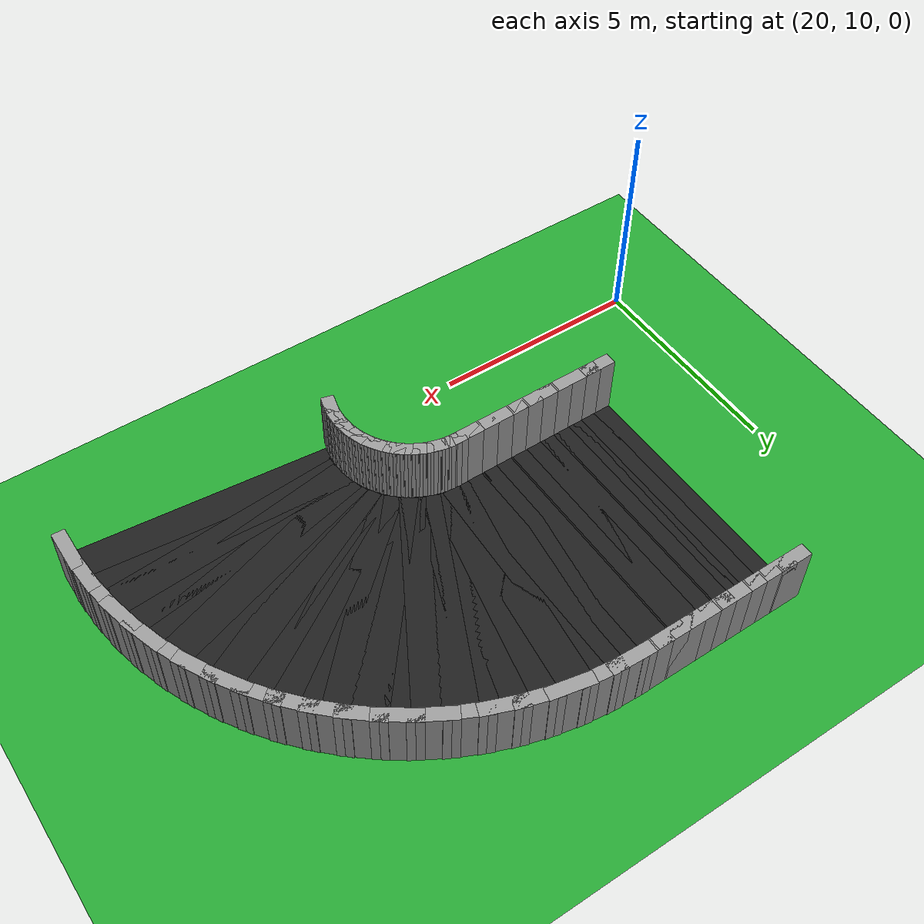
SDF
<sdf version="1.6">
 <world name="loop_road">
  <include><uri>model://sun</uri></include>
  <model name="ground_plane">
   <static>true</static>
   <link name="link">
    <collision name="collision">
     <surface><friction><ode><mu>100</mu><mu2>50</mu2></ode></friction></surface>
     <geometry><plane><normal>0 0 1</normal><size>120 120</size></plane></geometry>
    </collision>
    <visual name="visual">
     <geometry><plane><normal>0 0 1</normal><size>120 120</size></plane></geometry>
     <material>
      <script><uri>file://media/materials/scripts/gazebo.material</uri><name>Gazebo/Green</name></script>
     </material>
    </visual>
   </link>
  </model>
  <model name="curbL_87">
   <static>true</static>
   <pose>28.274 10.116 0.750 0 0 1.31351</pose>
   <link name="link">
    <collision name="collision"><geometry><box><size>0.510 0.300 1.500</size></box></geometry></collision>
    <visual name="visual">
     <geometry><box><size>0.510 0.300 1.500</size></box></geometry>
     <material>
      <script><uri>file://media/materials/scripts/gazebo.material</uri><name>Gazebo/Grey</name></script>
     </material>
    </visual>
   </link>
  </model>
  <model name="curbL_88">
   <static>true</static>
   <pose>28.306 10.263 0.750 0 0 1.39476</pose>
   <link name="link">
    <collision name="collision"><geometry><box><size>0.510 0.300 1.500</size></box></geometry></collision>
    <visual name="visual">
     <geometry><box><size>0.510 0.300 1.500</size></box></geometry>
     <material>
      <script><uri>file://media/materials/scripts/gazebo.material</uri><name>Gazebo/Grey</name></script>
     </material>
    </visual>
   </link>
  </model>
  <model name="asphalt_89">
   <static>true</static>
   <pose>31.460 10.114 0.005 0 0 1.47601</pose>
   <link name="link">
    <visual name="visual">
     <geometry><box><size>0.766 6.000 0.010</size></box></geometry>
     <material>
      <script><uri>file://media/materials/scripts/gazebo.material</uri><name>Gazebo/Black</name></script>
     </material>
    </visual>
   </link>
  </model>
  <model name="curbL_89">
   <static>true</static>
   <pose>28.326 10.412 0.750 0 0 1.47601</pose>
   <link name="link">
    <collision name="collision"><geometry><box><size>0.510 0.300 1.500</size></box></geometry></collision>
    <visual name="visual">
     <geometry><box><size>0.510 0.300 1.500</size></box></geometry>
     <material>
      <script><uri>file://media/materials/scripts/gazebo.material</uri><name>Gazebo/Grey</name></script>
     </material>
    </visual>
   </link>
  </model>
  <model name="asphalt_90">
   <static>true</static>
   <pose>31.481 10.519 0.005 0 0 1.55725</pose>
   <link name="link">
    <visual name="visual">
     <geometry><box><size>0.766 6.000 0.010</size></box></geometry>
     <material>
      <script><uri>file://media/materials/scripts/gazebo.material</uri><name>Gazebo/Black</name></script>
     </material>
    </visual>
   </link>
  </model>
  <model name="curbL_90">
   <static>true</static>
   <pose>28.334 10.562 0.750 0 0 1.55725</pose>
   <link name="link">
    <collision name="collision"><geometry><box><size>0.510 0.300 1.500</size></box></geometry></collision>
    <visual name="visual">
     <geometry><box><size>0.510 0.300 1.500</size></box></geometry>
     <material>
      <script><uri>file://media/materials/scripts/gazebo.material</uri><name>Gazebo/Grey</name></script>
     </material>
    </visual>
   </link>
  </model>
  <model name="curbR_90">
   <static>true</static>
   <pose>34.629 10.477 0.750 0 0 1.55725</pose>
   <link name="link">
    <collision name="collision"><geometry><box><size>1.022 0.300 1.500</size></box></geometry></collision>
    <visual name="visual">
     <geometry><box><size>1.022 0.300 1.500</size></box></geometry>
     <material>
      <script><uri>file://media/materials/scripts/gazebo.material</uri><name>Gazebo/Grey</name></script>
     </material>
    </visual>
   </link>
  </model>
  <model name="asphalt_91">
   <static>true</static>
   <pose>31.470 10.925 0.005 0 0 1.63850</pose>
   <link name="link">
    <visual name="visual">
     <geometry><box><size>0.766 6.000 0.010</size></box></geometry>
     <material>
      <script><uri>file://media/materials/scripts/gazebo.material</uri><name>Gazebo/Black</name></script>
     </material>
    </visual>
   </link>
  </model>
  <model name="curbL_91">
   <static>true</static>
   <pose>28.330 10.712 0.750 0 0 1.63850</pose>
   <link name="link">
    <collision name="collision"><geometry><box><size>0.510 0.300 1.500</size></box></geometry></collision>
    <visual name="visual">
     <geometry><box><size>0.510 0.300 1.500</size></box></geometry>
     <material>
      <script><uri>file://media/materials/scripts/gazebo.material</uri><name>Gazebo/Grey</name></script>
     </material>
    </visual>
   </link>
  </model>
  <model name="curbR_91">
   <static>true</static>
   <pose>34.611 11.138 0.750 0 0 1.63850</pose>
   <link name="link">
    <collision name="collision"><geometry><box><size>1.022 0.300 1.500</size></box></geometry></collision>
    <visual name="visual">
     <geometry><box><size>1.022 0.300 1.500</size></box></geometry>
     <material>
      <script><uri>file://media/materials/scripts/gazebo.material</uri><name>Gazebo/Grey</name></script>
     </material>
    </visual>
   </link>
  </model>
  <model name="asphalt_92">
   <static>true</static>
   <pose>31.427 11.329 0.005 0 0 1.71975</pose>
   <link name="link">
    <visual name="visual">
     <geometry><box><size>0.766 6.000 0.010</size></box></geometry>
     <material>
      <script><uri>file://media/materials/scripts/gazebo.material</uri><name>Gazebo/Black</name></script>
     </material>
    </visual>
   </link>
  </model>
  <model name="curbL_92">
   <static>true</static>
   <pose>28.314 10.861 0.750 0 0 1.71975</pose>
   <link name="link">
    <collision name="collision"><geometry><box><size>0.510 0.300 1.500</size></box></geometry></collision>
    <visual name="visual">
     <geometry><box><size>0.510 0.300 1.500</size></box></geometry>
     <material>
      <script><uri>file://media/materials/scripts/gazebo.material</uri><name>Gazebo/Grey</name></script>
     </material>
    </visual>
   </link>
  </model>
  <model name="curbR_92">
   <static>true</static>
   <pose>34.539 11.796 0.750 0 0 1.71975</pose>
   <link name="link">
    <collision name="collision"><geometry><box><size>1.022 0.300 1.500</size></box></geometry></collision>
    <visual name="visual">
     <geometry><box><size>1.022 0.300 1.500</size></box></geometry>
     <material>
      <script><uri>file://media/materials/scripts/gazebo.material</uri><name>Gazebo/Grey</name></script>
     </material>
    </visual>
   </link>
  </model>
  <model name="asphalt_93">
   <static>true</static>
   <pose>31.350 11.727 0.005 0 0 1.80100</pose>
   <link name="link">
    <visual name="visual">
     <geometry><box><size>0.766 6.000 0.010</size></box></geometry>
     <material>
      <script><uri>file://media/materials/scripts/gazebo.material</uri><name>Gazebo/Black</name></script>
     </material>
    </visual>
   </link>
  </model>
  <model name="curbL_93">
   <static>true</static>
   <pose>28.286 11.009 0.750 0 0 1.80100</pose>
   <link name="link">
    <collision name="collision"><geometry><box><size>0.510 0.300 1.500</size></box></geometry></collision>
    <visual name="visual">
     <geometry><box><size>0.510 0.300 1.500</size></box></geometry>
     <material>
      <script><uri>file://media/materials/scripts/gazebo.material</uri><name>Gazebo/Grey</name></script>
     </material>
    </visual>
   </link>
  </model>
  <model name="curbR_93">
   <static>true</static>
   <pose>34.414 12.445 0.750 0 0 1.80100</pose>
   <link name="link">
    <collision name="collision"><geometry><box><size>1.022 0.300 1.500</size></box></geometry></collision>
    <visual name="visual">
     <geometry><box><size>1.022 0.300 1.500</size></box></geometry>
     <material>
      <script><uri>file://media/materials/scripts/gazebo.material</uri><name>Gazebo/Grey</name></script>
     </material>
    </visual>
   </link>
  </model>
  <model name="asphalt_94">
   <static>true</static>
   <pose>31.242 12.118 0.005 0 0 1.88225</pose>
   <link name="link">
    <visual name="visual">
     <geometry><box><size>0.766 6.000 0.010</size></box></geometry>
     <material>
      <script><uri>file://media/materials/scripts/gazebo.material</uri><name>Gazebo/Black</name></script>
     </material>
    </visual>
   </link>
  </model>
  <model name="curbL_94">
   <static>true</static>
   <pose>28.246 11.154 0.750 0 0 1.88225</pose>
   <link name="link">
    <collision name="collision"><geometry><box><size>0.510 0.300 1.500</size></box></geometry></collision>
    <visual name="visual">
     <geometry><box><size>0.510 0.300 1.500</size></box></geometry>
     <material>
      <script><uri>file://media/materials/scripts/gazebo.material</uri><name>Gazebo/Grey</name></script>
     </material>
    </visual>
   </link>
  </model>
  <model name="curbR_94">
   <static>true</static>
   <pose>34.237 13.083 0.750 0 0 1.88225</pose>
   <link name="link">
    <collision name="collision"><geometry><box><size>1.022 0.300 1.500</size></box></geometry></collision>
    <visual name="visual">
     <geometry><box><size>1.022 0.300 1.500</size></box></geometry>
     <material>
      <script><uri>file://media/materials/scripts/gazebo.material</uri><name>Gazebo/Grey</name></script>
     </material>
    </visual>
   </link>
  </model>
  <model name="asphalt_95">
   <static>true</static>
   <pose>31.102 12.499 0.005 0 0 1.96350</pose>
   <link name="link">
    <visual name="visual">
     <geometry><box><size>0.766 6.000 0.010</size></box></geometry>
     <material>
      <script><uri>file://media/materials/scripts/gazebo.material</uri><name>Gazebo/Black</name></script>
     </material>
    </visual>
   </link>
  </model>
  <model name="curbL_95">
   <static>true</static>
   <pose>28.194 11.295 0.750 0 0 1.96350</pose>
   <link name="link">
    <collision name="collision"><geometry><box><size>0.510 0.300 1.500</size></box></geometry></collision>
    <visual name="visual">
     <geometry><box><size>0.510 0.300 1.500</size></box></geometry>
     <material>
      <script><uri>file://media/materials/scripts/gazebo.material</uri><name>Gazebo/Grey</name></script>
     </material>
    </visual>
   </link>
  </model>
  <model name="curbR_95">
   <static>true</static>
   <pose>34.009 13.704 0.750 0 0 1.96350</pose>
   <link name="link">
    <collision name="collision"><geometry><box><size>1.022 0.300 1.500</size></box></geometry></collision>
    <visual name="visual">
     <geometry><box><size>1.022 0.300 1.500</size></box></geometry>
     <material>
      <script><uri>file://media/materials/scripts/gazebo.material</uri><name>Gazebo/Grey</name></script>
     </material>
    </visual>
   </link>
  </model>
  <model name="asphalt_96">
   <static>true</static>
   <pose>30.931 12.868 0.005 0 0 2.04474</pose>
   <link name="link">
    <visual name="visual">
     <geometry><box><size>0.766 6.000 0.010</size></box></geometry>
     <material>
      <script><uri>file://media/materials/scripts/gazebo.material</uri><name>Gazebo/Black</name></script>
     </material>
    </visual>
   </link>
  </model>
  <model name="curbL_96">
   <static>true</static>
   <pose>28.131 11.431 0.750 0 0 2.04474</pose>
   <link name="link">
    <collision name="collision"><geometry><box><size>0.510 0.300 1.500</size></box></geometry></collision>
    <visual name="visual">
     <geometry><box><size>0.510 0.300 1.500</size></box></geometry>
     <material>
      <script><uri>file://media/materials/scripts/gazebo.material</uri><name>Gazebo/Grey</name></script>
     </material>
    </visual>
   </link>
  </model>
  <model name="curbR_96">
   <static>true</static>
   <pose>33.732 14.304 0.750 0 0 2.04474</pose>
   <link name="link">
    <collision name="collision"><geometry><box><size>1.022 0.300 1.500</size></box></geometry></collision>
    <visual name="visual">
     <geometry><box><size>1.022 0.300 1.500</size></box></geometry>
     <material>
      <script><uri>file://media/materials/scripts/gazebo.material</uri><name>Gazebo/Grey</name></script>
     </material>
    </visual>
   </link>
  </model>
  <model name="asphalt_97">
   <static>true</static>
   <pose>30.731 13.221 0.005 0 0 2.12599</pose>
   <link name="link">
    <visual name="visual">
     <geometry><box><size>0.766 6.000 0.010</size></box></geometry>
     <material>
      <script><uri>file://media/materials/scripts/gazebo.material</uri><name>Gazebo/Black</name></script>
     </material>
    </visual>
   </link>
  </model>
  <model name="curbL_97">
   <static>true</static>
   <pose>28.057 11.562 0.750 0 0 2.12599</pose>
   <link name="link">
    <collision name="collision"><geometry><box><size>0.510 0.300 1.500</size></box></geometry></collision>
    <visual name="visual">
     <geometry><box><size>0.510 0.300 1.500</size></box></geometry>
     <material>
      <script><uri>file://media/materials/scripts/gazebo.material</uri><name>Gazebo/Grey</name></script>
     </material>
    </visual>
   </link>
  </model>
  <model name="curbR_97">
   <static>true</static>
   <pose>33.406 14.880 0.750 0 0 2.12599</pose>
   <link name="link">
    <collision name="collision"><geometry><box><size>1.022 0.300 1.500</size></box></geometry></collision>
    <visual name="visual">
     <geometry><box><size>1.022 0.300 1.500</size></box></geometry>
     <material>
      <script><uri>file://media/materials/scripts/gazebo.material</uri><name>Gazebo/Grey</name></script>
     </material>
    </visual>
   </link>
  </model>
  <model name="asphalt_98">
   <static>true</static>
   <pose>30.504 13.557 0.005 0 0 2.20724</pose>
   <link name="link">
    <visual name="visual">
     <geometry><box><size>0.766 6.000 0.010</size></box></geometry>
     <material>
      <script><uri>file://media/materials/scripts/gazebo.material</uri><name>Gazebo/Black</name></script>
     </material>
    </visual>
   </link>
  </model>
  <model name="curbL_98">
   <static>true</static>
   <pose>27.972 11.686 0.750 0 0 2.20724</pose>
   <link name="link">
    <collision name="collision"><geometry><box><size>0.510 0.300 1.500</size></box></geometry></collision>
    <visual name="visual">
     <geometry><box><size>0.510 0.300 1.500</size></box></geometry>
     <material>
      <script><uri>file://media/materials/scripts/gazebo.material</uri><name>Gazebo/Grey</name></script>
     </material>
    </visual>
   </link>
  </model>
  <model name="curbR_98">
   <static>true</static>
   <pose>33.035 15.428 0.750 0 0 2.20724</pose>
   <link name="link">
    <collision name="collision"><geometry><box><size>1.022 0.300 1.500</size></box></geometry></collision>
    <visual name="visual">
     <geometry><box><size>1.022 0.300 1.500</size></box></geometry>
     <material>
      <script><uri>file://media/materials/scripts/gazebo.material</uri><name>Gazebo/Grey</name></script>
     </material>
    </visual>
   </link>
  </model>
  <model name="asphalt_99">
   <static>true</static>
   <pose>30.249 13.873 0.005 0 0 2.28849</pose>
   <link name="link">
    <visual name="visual">
     <geometry><box><size>0.766 6.000 0.010</size></box></geometry>
     <material>
      <script><uri>file://media/materials/scripts/gazebo.material</uri><name>Gazebo/Black</name></script>
     </material>
    </visual>
   </link>
  </model>
  <model name="curbL_99">
   <static>true</static>
   <pose>27.878 11.803 0.750 0 0 2.28849</pose>
   <link name="link">
    <collision name="collision"><geometry><box><size>0.510 0.300 1.500</size></box></geometry></collision>
    <visual name="visual">
     <geometry><box><size>0.510 0.300 1.500</size></box></geometry>
     <material>
      <script><uri>file://media/materials/scripts/gazebo.material</uri><name>Gazebo/Grey</name></script>
     </material>
    </visual>
   </link>
  </model>
  <model name="curbR_99">
   <static>true</static>
   <pose>32.620 15.943 0.750 0 0 2.28849</pose>
   <link name="link">
    <collision name="collision"><geometry><box><size>1.022 0.300 1.500</size></box></geometry></collision>
    <visual name="visual">
     <geometry><box><size>1.022 0.300 1.500</size></box></geometry>
     <material>
      <script><uri>file://media/materials/scripts/gazebo.material</uri><name>Gazebo/Grey</name></script>
     </material>
    </visual>
   </link>
  </model>
  <model name="asphalt_100">
   <static>true</static>
   <pose>29.970 14.168 0.005 0 0 2.36974</pose>
   <link name="link">
    <visual name="visual">
     <geometry><box><size>0.766 6.000 0.010</size></box></geometry>
     <material>
      <script><uri>file://media/materials/scripts/gazebo.material</uri><name>Gazebo/Black</name></script>
     </material>
    </visual>
   </link>
  </model>
  <model name="curbL_100">
   <static>true</static>
   <pose>27.775 11.913 0.750 0 0 2.36974</pose>
   <link name="link">
    <collision name="collision"><geometry><box><size>0.510 0.300 1.500</size></box></geometry></collision>
    <visual name="visual">
     <geometry><box><size>0.510 0.300 1.500</size></box></geometry>
     <material>
      <script><uri>file://media/materials/scripts/gazebo.material</uri><name>Gazebo/Grey</name></script>
     </material>
    </visual>
   </link>
  </model>
  <model name="curbR_100">
   <static>true</static>
   <pose>32.165 16.424 0.750 0 0 2.36974</pose>
   <link name="link">
    <collision name="collision"><geometry><box><size>1.022 0.300 1.500</size></box></geometry></collision>
    <visual name="visual">
     <geometry><box><size>1.022 0.300 1.500</size></box></geometry>
     <material>
      <script><uri>file://media/materials/scripts/gazebo.material</uri><name>Gazebo/Grey</name></script>
     </material>
    </visual>
   </link>
  </model>
  <model name="asphalt_101">
   <static>true</static>
   <pose>29.668 14.439 0.005 0 0 2.45098</pose>
   <link name="link">
    <visual name="visual">
     <geometry><box><size>0.766 6.000 0.010</size></box></geometry>
     <material>
      <script><uri>file://media/materials/scripts/gazebo.material</uri><name>Gazebo/Black</name></script>
     </material>
    </visual>
   </link>
  </model>
  <model name="curbL_101">
   <static>true</static>
   <pose>27.663 12.013 0.750 0 0 2.45098</pose>
   <link name="link">
    <collision name="collision"><geometry><box><size>0.510 0.300 1.500</size></box></geometry></collision>
    <visual name="visual">
     <geometry><box><size>0.510 0.300 1.500</size></box></geometry>
     <material>
      <script><uri>file://media/materials/scripts/gazebo.material</uri><name>Gazebo/Grey</name></script>
     </material>
    </visual>
   </link>
  </model>
  <model name="curbR_101">
   <static>true</static>
   <pose>31.673 16.865 0.750 0 0 2.45098</pose>
   <link name="link">
    <collision name="collision"><geometry><box><size>1.022 0.300 1.500</size></box></geometry></collision>
    <visual name="visual">
     <geometry><box><size>1.022 0.300 1.500</size></box></geometry>
     <material>
      <script><uri>file://media/materials/scripts/gazebo.material</uri><name>Gazebo/Grey</name></script>
     </material>
    </visual>
   </link>
  </model>
  <model name="asphalt_102">
   <static>true</static>
   <pose>29.345 14.685 0.005 0 0 2.53223</pose>
   <link name="link">
    <visual name="visual">
     <geometry><box><size>0.766 6.000 0.010</size></box></geometry>
     <material>
      <script><uri>file://media/materials/scripts/gazebo.material</uri><name>Gazebo/Black</name></script>
     </material>
    </visual>
   </link>
  </model>
  <model name="curbL_102">
   <static>true</static>
   <pose>27.543 12.104 0.750 0 0 2.53223</pose>
   <link name="link">
    <collision name="collision"><geometry><box><size>0.510 0.300 1.500</size></box></geometry></collision>
    <visual name="visual">
     <geometry><box><size>0.510 0.300 1.500</size></box></geometry>
     <material>
      <script><uri>file://media/materials/scripts/gazebo.material</uri><name>Gazebo/Grey</name></script>
     </material>
    </visual>
   </link>
  </model>
  <model name="curbR_102">
   <static>true</static>
   <pose>31.146 17.266 0.750 0 0 2.53223</pose>
   <link name="link">
    <collision name="collision"><geometry><box><size>1.022 0.300 1.500</size></box></geometry></collision>
    <visual name="visual">
     <geometry><box><size>1.022 0.300 1.500</size></box></geometry>
     <material>
      <script><uri>file://media/materials/scripts/gazebo.material</uri><name>Gazebo/Grey</name></script>
     </material>
    </visual>
   </link>
  </model>
  <model name="asphalt_103">
   <static>true</static>
   <pose>29.003 14.903 0.005 0 0 2.61348</pose>
   <link name="link">
    <visual name="visual">
     <geometry><box><size>0.766 6.000 0.010</size></box></geometry>
     <material>
      <script><uri>file://media/materials/scripts/gazebo.material</uri><name>Gazebo/Black</name></script>
     </material>
    </visual>
   </link>
  </model>
  <model name="curbL_103">
   <static>true</static>
   <pose>27.417 12.185 0.750 0 0 2.61348</pose>
   <link name="link">
    <collision name="collision"><geometry><box><size>0.510 0.300 1.500</size></box></geometry></collision>
    <visual name="visual">
     <geometry><box><size>0.510 0.300 1.500</size></box></geometry>
     <material>
      <script><uri>file://media/materials/scripts/gazebo.material</uri><name>Gazebo/Grey</name></script>
     </material>
    </visual>
   </link>
  </model>
  <model name="curbR_103">
   <static>true</static>
   <pose>30.589 17.622 0.750 0 0 2.61348</pose>
   <link name="link">
    <collision name="collision"><geometry><box><size>1.022 0.300 1.500</size></box></geometry></collision>
    <visual name="visual">
     <geometry><box><size>1.022 0.300 1.500</size></box></geometry>
     <material>
      <script><uri>file://media/materials/scripts/gazebo.material</uri><name>Gazebo/Grey</name></script>
     </material>
    </visual>
   </link>
  </model>
  <model name="asphalt_104">
   <static>true</static>
   <pose>28.644 15.093 0.005 0 0 2.69473</pose>
   <link name="link">
    <visual name="visual">
     <geometry><box><size>0.766 6.000 0.010</size></box></geometry>
     <material>
      <script><uri>file://media/materials/scripts/gazebo.material</uri><name>Gazebo/Black</name></script>
     </material>
    </visual>
   </link>
  </model>
  <model name="curbL_104">
   <static>true</static>
   <pose>27.284 12.255 0.750 0 0 2.69473</pose>
   <link name="link">
    <collision name="collision"><geometry><box><size>0.510 0.300 1.500</size></box></geometry></collision>
    <visual name="visual">
     <geometry><box><size>0.510 0.300 1.500</size></box></geometry>
     <material>
      <script><uri>file://media/materials/scripts/gazebo.material</uri><name>Gazebo/Grey</name></script>
     </material>
    </visual>
   </link>
  </model>
  <model name="curbR_104">
   <static>true</static>
   <pose>30.004 17.932 0.750 0 0 2.69473</pose>
   <link name="link">
    <collision name="collision"><geometry><box><size>1.022 0.300 1.500</size></box></geometry></collision>
    <visual name="visual">
     <geometry><box><size>1.022 0.300 1.500</size></box></geometry>
     <material>
      <script><uri>file://media/materials/scripts/gazebo.material</uri><name>Gazebo/Grey</name></script>
     </material>
    </visual>
   </link>
  </model>
  <model name="asphalt_105">
   <static>true</static>
   <pose>28.271 15.254 0.005 0 0 2.77598</pose>
   <link name="link">
    <visual name="visual">
     <geometry><box><size>0.766 6.000 0.010</size></box></geometry>
     <material>
      <script><uri>file://media/materials/scripts/gazebo.material</uri><name>Gazebo/Black</name></script>
     </material>
    </visual>
   </link>
  </model>
  <model name="curbL_105">
   <static>true</static>
   <pose>27.146 12.314 0.750 0 0 2.77598</pose>
   <link name="link">
    <collision name="collision"><geometry><box><size>0.510 0.300 1.500</size></box></geometry></collision>
    <visual name="visual">
     <geometry><box><size>0.510 0.300 1.500</size></box></geometry>
     <material>
      <script><uri>file://media/materials/scripts/gazebo.material</uri><name>Gazebo/Grey</name></script>
     </material>
    </visual>
   </link>
  </model>
  <model name="curbR_105">
   <static>true</static>
   <pose>29.397 18.193 0.750 0 0 2.77598</pose>
   <link name="link">
    <collision name="collision"><geometry><box><size>1.022 0.300 1.500</size></box></geometry></collision>
    <visual name="visual">
     <geometry><box><size>1.022 0.300 1.500</size></box></geometry>
     <material>
      <script><uri>file://media/materials/scripts/gazebo.material</uri><name>Gazebo/Grey</name></script>
     </material>
    </visual>
   </link>
  </model>
  <model name="asphalt_106">
   <static>true</static>
   <pose>27.887 15.383 0.005 0 0 2.85722</pose>
   <link name="link">
    <visual name="visual">
     <geometry><box><size>0.766 6.000 0.010</size></box></geometry>
     <material>
      <script><uri>file://media/materials/scripts/gazebo.material</uri><name>Gazebo/Black</name></script>
     </material>
    </visual>
   </link>
  </model>
  <model name="curbL_106">
   <static>true</static>
   <pose>27.004 12.362 0.750 0 0 2.85722</pose>
   <link name="link">
    <collision name="collision"><geometry><box><size>0.510 0.300 1.500</size></box></geometry></collision>
    <visual name="visual">
     <geometry><box><size>0.510 0.300 1.500</size></box></geometry>
     <material>
      <script><uri>file://media/materials/scripts/gazebo.material</uri><name>Gazebo/Grey</name></script>
     </material>
    </visual>
   </link>
  </model>
  <model name="curbR_106">
   <static>true</static>
   <pose>28.770 18.404 0.750 0 0 2.85722</pose>
   <link name="link">
    <collision name="collision"><geometry><box><size>1.022 0.300 1.500</size></box></geometry></collision>
    <visual name="visual">
     <geometry><box><size>1.022 0.300 1.500</size></box></geometry>
     <material>
      <script><uri>file://media/materials/scripts/gazebo.material</uri><name>Gazebo/Grey</name></script>
     </material>
    </visual>
   </link>
  </model>
  <model name="asphalt_107">
   <static>true</static>
   <pose>27.493 15.481 0.005 0 0 2.93847</pose>
   <link name="link">
    <visual name="visual">
     <geometry><box><size>0.766 6.000 0.010</size></box></geometry>
     <material>
      <script><uri>file://media/materials/scripts/gazebo.material</uri><name>Gazebo/Black</name></script>
     </material>
    </visual>
   </link>
  </model>
  <model name="curbL_107">
   <static>true</static>
   <pose>26.858 12.399 0.750 0 0 2.93847</pose>
   <link name="link">
    <collision name="collision"><geometry><box><size>0.510 0.300 1.500</size></box></geometry></collision>
    <visual name="visual">
     <geometry><box><size>0.510 0.300 1.500</size></box></geometry>
     <material>
      <script><uri>file://media/materials/scripts/gazebo.material</uri><name>Gazebo/Grey</name></script>
     </material>
    </visual>
   </link>
  </model>
  <model name="curbR_107">
   <static>true</static>
   <pose>28.128 18.564 0.750 0 0 2.93847</pose>
   <link name="link">
    <collision name="collision"><geometry><box><size>1.022 0.300 1.500</size></box></geometry></collision>
    <visual name="visual">
     <geometry><box><size>1.022 0.300 1.500</size></box></geometry>
     <material>
      <script><uri>file://media/materials/scripts/gazebo.material</uri><name>Gazebo/Grey</name></script>
     </material>
    </visual>
   </link>
  </model>
  <model name="asphalt_108">
   <static>true</static>
   <pose>27.092 15.547 0.005 0 0 3.01972</pose>
   <link name="link">
    <visual name="visual">
     <geometry><box><size>0.766 6.000 0.010</size></box></geometry>
     <material>
      <script><uri>file://media/materials/scripts/gazebo.material</uri><name>Gazebo/Black</name></script>
     </material>
    </visual>
   </link>
  </model>
  <model name="curbL_108">
   <static>true</static>
   <pose>26.710 12.423 0.750 0 0 3.01972</pose>
   <link name="link">
    <collision name="collision"><geometry><box><size>0.510 0.300 1.500</size></box></geometry></collision>
    <visual name="visual">
     <geometry><box><size>0.510 0.300 1.500</size></box></geometry>
     <material>
      <script><uri>file://media/materials/scripts/gazebo.material</uri><name>Gazebo/Grey</name></script>
     </material>
    </visual>
   </link>
  </model>
  <model name="curbR_108">
   <static>true</static>
   <pose>27.475 18.671 0.750 0 0 3.01972</pose>
   <link name="link">
    <collision name="collision"><geometry><box><size>1.022 0.300 1.500</size></box></geometry></collision>
    <visual name="visual">
     <geometry><box><size>1.022 0.300 1.500</size></box></geometry>
     <material>
      <script><uri>file://media/materials/scripts/gazebo.material</uri><name>Gazebo/Grey</name></script>
     </material>
    </visual>
   </link>
  </model>
  <model name="asphalt_109">
   <static>true</static>
   <pose>26.688 15.580 0.005 0 0 3.10097</pose>
   <link name="link">
    <visual name="visual">
     <geometry><box><size>0.766 6.000 0.010</size></box></geometry>
     <material>
      <script><uri>file://media/materials/scripts/gazebo.material</uri><name>Gazebo/Black</name></script>
     </material>
    </visual>
   </link>
  </model>
  <model name="curbL_109">
   <static>true</static>
   <pose>26.560 12.435 0.750 0 0 3.10097</pose>
   <link name="link">
    <collision name="collision"><geometry><box><size>0.510 0.300 1.500</size></box></geometry></collision>
    <visual name="visual">
     <geometry><box><size>0.510 0.300 1.500</size></box></geometry>
     <material>
      <script><uri>file://media/materials/scripts/gazebo.material</uri><name>Gazebo/Grey</name></script>
     </material>
    </visual>
   </link>
  </model>
  <model name="curbR_109">
   <static>true</static>
   <pose>26.815 18.725 0.750 0 0 3.10097</pose>
   <link name="link">
    <collision name="collision"><geometry><box><size>1.022 0.300 1.500</size></box></geometry></collision>
    <visual name="visual">
     <geometry><box><size>1.022 0.300 1.500</size></box></geometry>
     <material>
      <script><uri>file://media/materials/scripts/gazebo.material</uri><name>Gazebo/Grey</name></script>
     </material>
    </visual>
   </link>
  </model>
  <model name="asphalt_110">
   <static>true</static>
   <pose>26.285 15.588 0.005 0 0 3.14159</pose>
   <link name="link">
    <visual name="visual">
     <geometry><box><size>0.760 6.000 0.010</size></box></geometry>
     <material>
      <script><uri>file://media/materials/scripts/gazebo.material</uri><name>Gazebo/Black</name></script>
     </material>
    </visual>
   </link>
  </model>
  <model name="curbL_110">
   <static>true</static>
   <pose>26.285 12.438 0.750 0 0 3.14159</pose>
   <link name="link">
    <collision name="collision"><geometry><box><size>0.760 0.300 1.500</size></box></geometry></collision>
    <visual name="visual">
     <geometry><box><size>0.760 0.300 1.500</size></box></geometry>
     <material>
      <script><uri>file://media/materials/scripts/gazebo.material</uri><name>Gazebo/Grey</name></script>
     </material>
    </visual>
   </link>
  </model>
  <model name="curbR_110">
   <static>true</static>
   <pose>26.285 18.738 0.750 0 0 3.14159</pose>
   <link name="link">
    <collision name="collision"><geometry><box><size>0.760 0.300 1.500</size></box></geometry></collision>
    <visual name="visual">
     <geometry><box><size>0.760 0.300 1.500</size></box></geometry>
     <material>
      <script><uri>file://media/materials/scripts/gazebo.material</uri><name>Gazebo/Grey</name></script>
     </material>
    </visual>
   </link>
  </model>
  <model name="asphalt_111">
   <static>true</static>
   <pose>25.885 15.588 0.005 0 0 3.14159</pose>
   <link name="link">
    <visual name="visual">
     <geometry><box><size>0.760 6.000 0.010</size></box></geometry>
     <material>
      <script><uri>file://media/materials/scripts/gazebo.material</uri><name>Gazebo/Black</name></script>
     </material>
    </visual>
   </link>
  </model>
  <model name="curbL_111">
   <static>true</static>
   <pose>25.885 12.438 0.750 0 0 3.14159</pose>
   <link name="link">
    <collision name="collision"><geometry><box><size>0.760 0.300 1.500</size></box></geometry></collision>
    <visual name="visual">
     <geometry><box><size>0.760 0.300 1.500</size></box></geometry>
     <material>
      <script><uri>file://media/materials/scripts/gazebo.material</uri><name>Gazebo/Grey</name></script>
     </material>
    </visual>
   </link>
  </model>
  <model name="curbR_111">
   <static>true</static>
   <pose>25.885 18.738 0.750 0 0 3.14159</pose>
   <link name="link">
    <collision name="collision"><geometry><box><size>0.760 0.300 1.500</size></box></geometry></collision>
    <visual name="visual">
     <geometry><box><size>0.760 0.300 1.500</size></box></geometry>
     <material>
      <script><uri>file://media/materials/scripts/gazebo.material</uri><name>Gazebo/Grey</name></script>
     </material>
    </visual>
   </link>
  </model>
  <model name="asphalt_112">
   <static>true</static>
   <pose>25.485 15.588 0.005 0 0 3.14159</pose>
   <link name="link">
    <visual name="visual">
     <geometry><box><size>0.760 6.000 0.010</size></box></geometry>
     <material>
      <script><uri>file://media/materials/scripts/gazebo.material</uri><name>Gazebo/Black</name></script>
     </material>
    </visual>
   </link>
  </model>
  <model name="curbL_112">
   <static>true</static>
   <pose>25.485 12.438 0.750 0 0 3.14159</pose>
   <link name="link">
    <collision name="collision"><geometry><box><size>0.760 0.300 1.500</size></box></geometry></collision>
    <visual name="visual">
     <geometry><box><size>0.760 0.300 1.500</size></box></geometry>
     <material>
      <script><uri>file://media/materials/scripts/gazebo.material</uri><name>Gazebo/Grey</name></script>
     </material>
    </visual>
   </link>
  </model>
  <model name="curbR_112">
   <static>true</static>
   <pose>25.485 18.738 0.750 0 0 3.14159</pose>
   <link name="link">
    <collision name="collision"><geometry><box><size>0.760 0.300 1.500</size></box></geometry></collision>
    <visual name="visual">
     <geometry><box><size>0.760 0.300 1.500</size></box></geometry>
     <material>
      <script><uri>file://media/materials/scripts/gazebo.material</uri><name>Gazebo/Grey</name></script>
     </material>
    </visual>
   </link>
  </model>
  <model name="asphalt_113">
   <static>true</static>
   <pose>25.085 15.588 0.005 0 0 3.14159</pose>
   <link name="link">
    <visual name="visual">
     <geometry><box><size>0.760 6.000 0.010</size></box></geometry>
     <material>
      <script><uri>file://media/materials/scripts/gazebo.material</uri><name>Gazebo/Black</name></script>
     </material>
    </visual>
   </link>
  </model>
  <model name="curbL_113">
   <static>true</static>
   <pose>25.085 12.438 0.750 0 0 3.14159</pose>
   <link name="link">
    <collision name="collision"><geometry><box><size>0.760 0.300 1.500</size></box></geometry></collision>
    <visual name="visual">
     <geometry><box><size>0.760 0.300 1.500</size></box></geometry>
     <material>
      <script><uri>file://media/materials/scripts/gazebo.material</uri><name>Gazebo/Grey</name></script>
     </material>
    </visual>
   </link>
  </model>
  <model name="curbR_113">
   <static>true</static>
   <pose>25.085 18.738 0.750 0 0 3.14159</pose>
   <link name="link">
    <collision name="collision"><geometry><box><size>0.760 0.300 1.500</size></box></geometry></collision>
    <visual name="visual">
     <geometry><box><size>0.760 0.300 1.500</size></box></geometry>
     <material>
      <script><uri>file://media/materials/scripts/gazebo.material</uri><name>Gazebo/Grey</name></script>
     </material>
    </visual>
   </link>
  </model>
  <model name="asphalt_114">
   <static>true</static>
   <pose>24.685 15.588 0.005 0 0 3.14159</pose>
   <link name="link">
    <visual name="visual">
     <geometry><box><size>0.760 6.000 0.010</size></box></geometry>
     <material>
      <script><uri>file://media/materials/scripts/gazebo.material</uri><name>Gazebo/Black</name></script>
     </material>
    </visual>
   </link>
  </model>
  <model name="curbL_114">
   <static>true</static>
   <pose>24.685 12.438 0.750 0 0 3.14159</pose>
   <link name="link">
    <collision name="collision"><geometry><box><size>0.760 0.300 1.500</size></box></geometry></collision>
    <visual name="visual">
     <geometry><box><size>0.760 0.300 1.500</size></box></geometry>
     <material>
      <script><uri>file://media/materials/scripts/gazebo.material</uri><name>Gazebo/Grey</name></script>
     </material>
    </visual>
   </link>
  </model>
  <model name="curbR_114">
   <static>true</static>
   <pose>24.685 18.738 0.750 0 0 3.14159</pose>
   <link name="link">
    <collision name="collision"><geometry><box><size>0.760 0.300 1.500</size></box></geometry></collision>
    <visual name="visual">
     <geometry><box><size>0.760 0.300 1.500</size></box></geometry>
     <material>
      <script><uri>file://media/materials/scripts/gazebo.material</uri><name>Gazebo/Grey</name></script>
     </material>
    </visual>
   </link>
  </model>
  <model name="asphalt_115">
   <static>true</static>
   <pose>24.285 15.588 0.005 0 0 3.14159</pose>
   <link name="link">
    <visual name="visual">
     <geometry><box><size>0.760 6.000 0.010</size></box></geometry>
     <material>
      <script><uri>file://media/materials/scripts/gazebo.material</uri><name>Gazebo/Black</name></script>
     </material>
    </visual>
   </link>
  </model>
  <model name="curbL_115">
   <static>true</static>
   <pose>24.285 12.438 0.750 0 0 3.14159</pose>
   <link name="link">
    <collision name="collision"><geometry><box><size>0.760 0.300 1.500</size></box></geometry></collision>
    <visual name="visual">
     <geometry><box><size>0.760 0.300 1.500</size></box></geometry>
     <material>
      <script><uri>file://media/materials/scripts/gazebo.material</uri><name>Gazebo/Grey</name></script>
     </material>
    </visual>
   </link>
  </model>
  <model name="curbR_115">
   <static>true</static>
   <pose>24.285 18.738 0.750 0 0 3.14159</pose>
   <link name="link">
    <collision name="collision"><geometry><box><size>0.760 0.300 1.500</size></box></geometry></collision>
    <visual name="visual">
     <geometry><box><size>0.760 0.300 1.500</size></box></geometry>
     <material>
      <script><uri>file://media/materials/scripts/gazebo.material</uri><name>Gazebo/Grey</name></script>
     </material>
    </visual>
   </link>
  </model>
  <model name="asphalt_116">
   <static>true</static>
   <pose>23.885 15.588 0.005 0 0 3.14159</pose>
   <link name="link">
    <visual name="visual">
     <geometry><box><size>0.760 6.000 0.010</size></box></geometry>
     <material>
      <script><uri>file://media/materials/scripts/gazebo.material</uri><name>Gazebo/Black</name></script>
     </material>
    </visual>
   </link>
  </model>
  <model name="curbL_116">
   <static>true</static>
   <pose>23.885 12.438 0.750 0 0 3.14159</pose>
   <link name="link">
    <collision name="collision"><geometry><box><size>0.760 0.300 1.500</size></box></geometry></collision>
    <visual name="visual">
     <geometry><box><size>0.760 0.300 1.500</size></box></geometry>
     <material>
      <script><uri>file://media/materials/scripts/gazebo.material</uri><name>Gazebo/Grey</name></script>
     </material>
    </visual>
   </link>
  </model>
  <model name="curbR_116">
   <static>true</static>
   <pose>23.885 18.738 0.750 0 0 3.14159</pose>
   <link name="link">
    <collision name="collision"><geometry><box><size>0.760 0.300 1.500</size></box></geometry></collision>
    <visual name="visual">
     <geometry><box><size>0.760 0.300 1.500</size></box></geometry>
     <material>
      <script><uri>file://media/materials/scripts/gazebo.material</uri><name>Gazebo/Grey</name></script>
     </material>
    </visual>
   </link>
  </model>
  <model name="asphalt_117">
   <static>true</static>
   <pose>23.485 15.588 0.005 0 0 3.14159</pose>
   <link name="link">
    <visual name="visual">
     <geometry><box><size>0.760 6.000 0.010</size></box></geometry>
     <material>
      <script><uri>file://media/materials/scripts/gazebo.material</uri><name>Gazebo/Black</name></script>
     </material>
    </visual>
   </link>
  </model>
  <model name="curbL_117">
   <static>true</static>
   <pose>23.485 12.438 0.750 0 0 3.14159</pose>
   <link name="link">
    <collision name="collision"><geometry><box><size>0.760 0.300 1.500</size></box></geometry></collision>
    <visual name="visual">
     <geometry><box><size>0.760 0.300 1.500</size></box></geometry>
     <material>
      <script><uri>file://media/materials/scripts/gazebo.material</uri><name>Gazebo/Grey</name></script>
     </material>
    </visual>
   </link>
  </model>
  <model name="curbR_117">
   <static>true</static>
   <pose>23.485 18.738 0.750 0 0 3.14159</pose>
   <link name="link">
    <collision name="collision"><geometry><box><size>0.760 0.300 1.500</size></box></geometry></collision>
    <visual name="visual">
     <geometry><box><size>0.760 0.300 1.500</size></box></geometry>
     <material>
      <script><uri>file://media/materials/scripts/gazebo.material</uri><name>Gazebo/Grey</name></script>
     </material>
    </visual>
   </link>
  </model>
  <model name="asphalt_118">
   <static>true</static>
   <pose>23.085 15.588 0.005 0 0 3.14159</pose>
   <link name="link">
    <visual name="visual">
     <geometry><box><size>0.760 6.000 0.010</size></box></geometry>
     <material>
      <script><uri>file://media/materials/scripts/gazebo.material</uri><name>Gazebo/Black</name></script>
     </material>
    </visual>
   </link>
  </model>
  <model name="curbL_118">
   <static>true</static>
   <pose>23.085 12.438 0.750 0 0 3.14159</pose>
   <link name="link">
    <collision name="collision"><geometry><box><size>0.760 0.300 1.500</size></box></geometry></collision>
    <visual name="visual">
     <geometry><box><size>0.760 0.300 1.500</size></box></geometry>
     <material>
      <script><uri>file://media/materials/scripts/gazebo.material</uri><name>Gazebo/Grey</name></script>
     </material>
    </visual>
   </link>
  </model>
  <model name="curbR_118">
   <static>true</static>
   <pose>23.085 18.738 0.750 0 0 3.14159</pose>
   <link name="link">
    <collision name="collision"><geometry><box><size>0.760 0.300 1.500</size></box></geometry></collision>
    <visual name="visual">
     <geometry><box><size>0.760 0.300 1.500</size></box></geometry>
     <material>
      <script><uri>file://media/materials/scripts/gazebo.material</uri><name>Gazebo/Grey</name></script>
     </material>
    </visual>
   </link>
  </model>
  <model name="asphalt_119">
   <static>true</static>
   <pose>22.685 15.588 0.005 0 0 3.14159</pose>
   <link name="link">
    <visual name="visual">
     <geometry><box><size>0.760 6.000 0.010</size></box></geometry>
     <material>
      <script><uri>file://media/materials/scripts/gazebo.material</uri><name>Gazebo/Black</name></script>
     </material>
    </visual>
   </link>
  </model>
  <model name="curbL_119">
   <static>true</static>
   <pose>22.685 12.438 0.750 0 0 3.14159</pose>
   <link name="link">
    <collision name="collision"><geometry><box><size>0.760 0.300 1.500</size></box></geometry></collision>
    <visual name="visual">
     <geometry><box><size>0.760 0.300 1.500</size></box></geometry>
     <material>
      <script><uri>file://media/materials/scripts/gazebo.material</uri><name>Gazebo/Grey</name></script>
     </material>
    </visual>
   </link>
  </model>
  <model name="curbR_119">
   <static>true</static>
   <pose>22.685 18.738 0.750 0 0 3.14159</pose>
   <link name="link">
    <collision name="collision"><geometry><box><size>0.760 0.300 1.500</size></box></geometry></collision>
    <visual name="visual">
     <geometry><box><size>0.760 0.300 1.500</size></box></geometry>
     <material>
      <script><uri>file://media/materials/scripts/gazebo.material</uri><name>Gazebo/Grey</name></script>
     </material>
    </visual>
   </link>
  </model>
 </world>
</sdf>
